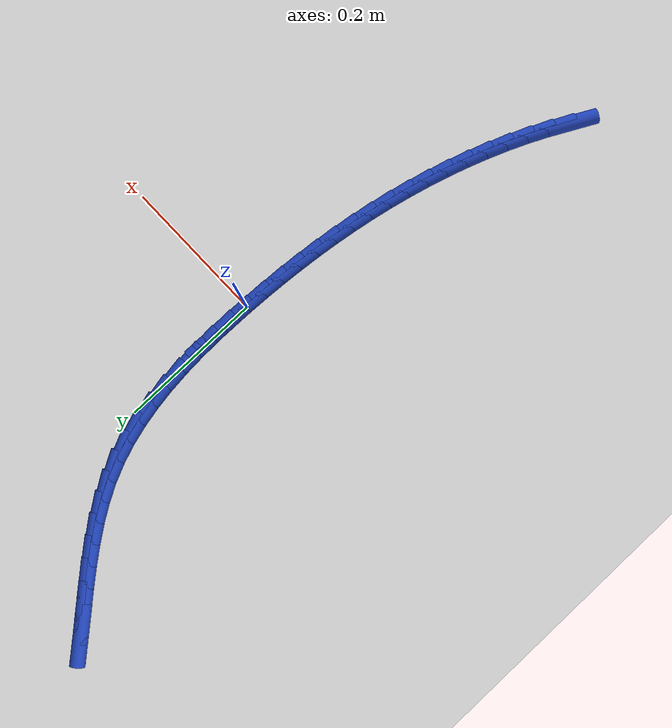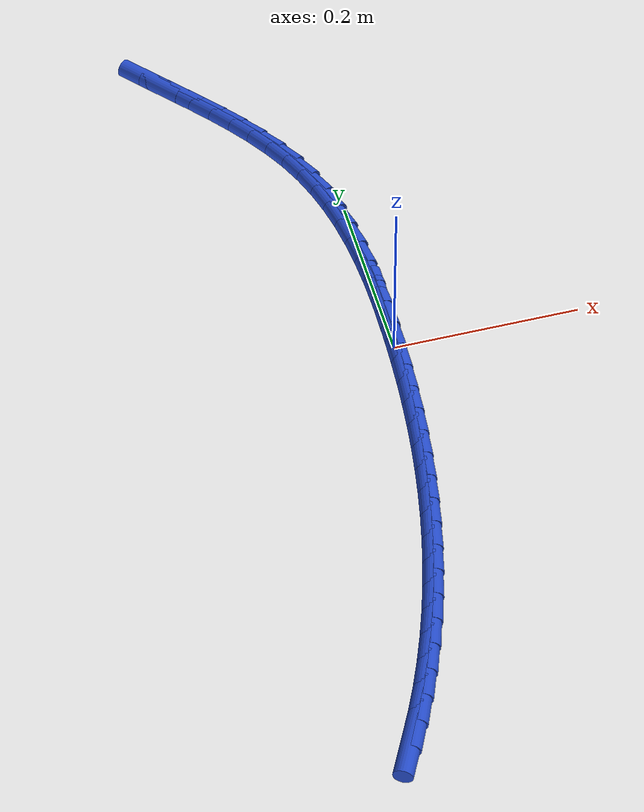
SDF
<sdf version="1.6">
 <world name="default">
  <model name="ground_plane">
   <static>1</static>
   <link name="link">
    <collision name="collision">
     <geometry><plane><normal>0 0 1</normal><size>100 100</size></plane></geometry>
     <surface><friction><ode><mu>100</mu><mu2>50</mu2></ode></friction></surface>
    </collision>
    <visual name="visual">
     <cast_shadows>0</cast_shadows>
     <geometry><plane><normal>0 0 1</normal><size>100 100</size></plane></geometry>
     <material>
      <script><uri>file://media/materials/scripts/gazebo.material</uri><name>Gazebo/WhiteGlow</name></script>
     </material>
    </visual>
   </link>
  </model>
  <model name="line">
   <link name="link_0">
    <pose>-6.7220534694101275e-18 4.163336342344337e-17 0.01 0 1.57 1.5436127908950652</pose>
    <collision name="collision">
     <geometry><cylinder><radius>0.01</radius><length>0.08</length></cylinder></geometry>
    </collision>
    <visual name="visual">
     <material>
      <script><name>Gazebo/Blue</name><uri>file://media/materials/scripts/gazebo.material</uri></script>
     </material>
     <geometry><cylinder><radius>0.01</radius><length>0.08</length></cylinder></geometry>
    </visual>
   </link>
   <link name="link_1">
    <pose>0.0007952474365013262 0.029247539705945094 0.01 0 1.57 1.5660994794677434</pose>
    <collision name="collision">
     <geometry><cylinder><radius>0.01</radius><length>0.08</length></cylinder></geometry>
    </collision>
    <visual name="visual">
     <material>
      <script><name>Gazebo/Blue</name><uri>file://media/materials/scripts/gazebo.material</uri></script>
     </material>
     <geometry><cylinder><radius>0.01</radius><length>0.08</length></cylinder></geometry>
    </visual>
   </link>
   <link name="link_2">
    <pose>0.0009331593185395411 0.058609973334598164 0.01 0 1.57 -1.547204821749383</pose>
    <collision name="collision">
     <geometry><cylinder><radius>0.01</radius><length>0.08</length></cylinder></geometry>
    </collision>
    <visual name="visual">
     <material>
      <script><name>Gazebo/Blue</name><uri>file://media/materials/scripts/gazebo.material</uri></script>
     </material>
     <geometry><cylinder><radius>0.01</radius><length>0.08</length></cylinder></geometry>
    </visual>
   </link>
   <link name="link_3">
    <pose>0.00024092148070058725 0.08794720332395434 0.01 0 1.57 -1.5127508872278654</pose>
    <collision name="collision">
     <geometry><cylinder><radius>0.01</radius><length>0.08</length></cylinder></geometry>
    </collision>
    <visual name="visual">
     <material>
      <script><name>Gazebo/Blue</name><uri>file://media/materials/scripts/gazebo.material</uri></script>
     </material>
     <geometry><cylinder><radius>0.01</radius><length>0.08</length></cylinder></geometry>
    </visual>
   </link>
   <link name="link_4">
    <pose>-0.001454280242429589 0.11711913211200858 0.01 0 1.57 -1.4716652824233203</pose>
    <collision name="collision">
     <geometry><cylinder><radius>0.01</radius><length>0.08</length></cylinder></geometry>
    </collision>
    <visual name="visual">
     <material>
      <script><name>Gazebo/Blue</name><uri>file://media/materials/scripts/gazebo.material</uri></script>
     </material>
     <geometry><cylinder><radius>0.01</radius><length>0.08</length></cylinder></geometry>
    </visual>
   </link>
   <link name="link_5">
    <pose>-0.004325260016265041 0.14598566213675607 0.01 0 1.57 -1.423406450708269</pose>
    <collision name="collision">
     <geometry><cylinder><radius>0.01</radius><length>0.08</length></cylinder></geometry>
    </collision>
    <visual name="visual">
     <material>
      <script><name>Gazebo/Blue</name><uri>file://media/materials/scripts/gazebo.material</uri></script>
     </material>
     <geometry><cylinder><radius>0.01</radius><length>0.08</length></cylinder></geometry>
    </visual>
   </link>
   <link name="link_6">
    <pose>-0.008544832006219827 0.1744066958361919 0.01 0 1.57 -1.3674012323876739</pose>
    <collision name="collision">
     <geometry><cylinder><radius>0.01</radius><length>0.08</length></cylinder></geometry>
    </collision>
    <visual name="visual">
     <material>
      <script><name>Gazebo/Blue</name><uri>file://media/materials/scripts/gazebo.material</uri></script>
     </material>
     <geometry><cylinder><radius>0.01</radius><length>0.08</length></cylinder></geometry>
    </visual>
   </link>
   <link name="link_7">
    <pose>-0.014285810377707991 0.20224213564831098 0.01 0 1.57 -1.3031154964479952</pose>
    <collision name="collision">
     <geometry><cylinder><radius>0.01</radius><length>0.08</length></cylinder></geometry>
    </collision>
    <visual name="visual">
     <material>
      <script><name>Gazebo/Blue</name><uri>file://media/materials/scripts/gazebo.material</uri></script>
     </material>
     <geometry><cylinder><radius>0.01</radius><length>0.08</length></cylinder></geometry>
    </visual>
   </link>
   <link name="link_8">
    <pose>-0.02172100929614359 0.22935188401110854 0.01 0 1.57 -1.2301605490318037</pose>
    <collision name="collision">
     <geometry><cylinder><radius>0.01</radius><length>0.08</length></cylinder></geometry>
    </collision>
    <visual name="visual">
     <material>
      <script><name>Gazebo/Blue</name><uri>file://media/materials/scripts/gazebo.material</uri></script>
     </material>
     <geometry><cylinder><radius>0.01</radius><length>0.08</length></cylinder></geometry>
    </visual>
   </link>
   <link name="link_9">
    <pose>-0.031023242926940683 0.25559584336257957 0.01 0 1.57 -1.148730025832334</pose>
    <collision name="collision">
     <geometry><cylinder><radius>0.01</radius><length>0.08</length></cylinder></geometry>
    </collision>
    <visual name="visual">
     <material>
      <script><name>Gazebo/Blue</name><uri>file://media/materials/scripts/gazebo.material</uri></script>
     </material>
     <geometry><cylinder><radius>0.01</radius><length>0.08</length></cylinder></geometry>
    </visual>
   </link>
   <link name="link_10">
    <pose>-0.042358504904863634 0.2808384239106037 0.01 0 1.57 -1.0682264505489718</pose>
    <collision name="collision">
     <geometry><cylinder><radius>0.01</radius><length>0.08</length></cylinder></geometry>
    </collision>
    <visual name="visual">
     <material>
      <script><name>Gazebo/Blue</name><uri>file://media/materials/scripts/gazebo.material</uri></script>
     </material>
     <geometry><cylinder><radius>0.01</radius><length>0.08</length></cylinder></geometry>
    </visual>
   </link>
   <link name="link_11">
    <pose>-0.055683894871363535 0.30508209638950606 0.01 0 1.57 -0.9999975761849269</pose>
    <collision name="collision">
     <geometry><cylinder><radius>0.01</radius><length>0.08</length></cylinder></geometry>
    </collision>
    <visual name="visual">
     <material>
      <script><name>Gazebo/Blue</name><uri>file://media/materials/scripts/gazebo.material</uri></script>
     </material>
     <geometry><cylinder><radius>0.01</radius><length>0.08</length></cylinder></geometry>
    </visual>
   </link>
   <link name="link_12">
    <pose>-0.07071383657959388 0.32848971891652495 0.01 0 1.57 -0.9450374537527997</pose>
    <collision name="collision">
     <geometry><cylinder><radius>0.01</radius><length>0.08</length></cylinder></geometry>
    </collision>
    <visual name="visual">
     <material>
      <script><name>Gazebo/Blue</name><uri>file://media/materials/scripts/gazebo.material</uri></script>
     </material>
     <geometry><cylinder><radius>0.01</radius><length>0.08</length></cylinder></geometry>
    </visual>
   </link>
   <link name="link_13">
    <pose>-0.08714912924655485 0.3512331542270027 0.01 0 1.57 -0.9032056299600782</pose>
    <collision name="collision">
     <geometry><cylinder><radius>0.01</radius><length>0.08</length></cylinder></geometry>
    </collision>
    <visual name="visual">
     <material>
      <script><name>Gazebo/Blue</name><uri>file://media/materials/scripts/gazebo.material</uri></script>
     </material>
     <geometry><cylinder><radius>0.01</radius><length>0.08</length></cylinder></geometry>
    </visual>
   </link>
   <link name="link_14">
    <pose>-0.10469057208924673 0.37348426505628124 0.01 0 1.57 -0.8741007875847613</pose>
    <collision name="collision">
     <geometry><cylinder><radius>0.01</radius><length>0.08</length></cylinder></geometry>
    </collision>
    <visual name="visual">
     <material>
      <script><name>Gazebo/Blue</name><uri>file://media/materials/scripts/gazebo.material</uri></script>
     </material>
     <geometry><cylinder><radius>0.01</radius><length>0.08</length></cylinder></geometry>
    </visual>
   </link>
   <link name="link_15">
    <pose>-0.12303896432466971 0.39541491413970276 0.01 0 1.57 -0.8572731410447892</pose>
    <collision name="collision">
     <geometry><cylinder><radius>0.01</radius><length>0.08</length></cylinder></geometry>
    </collision>
    <visual name="visual">
     <material>
      <script><name>Gazebo/Blue</name><uri>file://media/materials/scripts/gazebo.material</uri></script>
     </material>
     <geometry><cylinder><radius>0.01</radius><length>0.08</length></cylinder></geometry>
    </visual>
   </link>
   <link name="link_16">
    <pose>-0.14189510516982404 0.41719696421260943 0.01 0 1.57 -0.8523550540909516</pose>
    <collision name="collision">
     <geometry><cylinder><radius>0.01</radius><length>0.08</length></cylinder></geometry>
    </collision>
    <visual name="visual">
     <material>
      <script><name>Gazebo/Blue</name><uri>file://media/materials/scripts/gazebo.material</uri></script>
     </material>
     <geometry><cylinder><radius>0.01</radius><length>0.08</length></cylinder></geometry>
    </visual>
   </link>
   <link name="link_17">
    <pose>-0.16095979384170983 0.4390022780103431 0.01 0 1.57 -0.8591250138811715</pose>
    <collision name="collision">
     <geometry><cylinder><radius>0.01</radius><length>0.08</length></cylinder></geometry>
    </collision>
    <visual name="visual">
     <material>
      <script><name>Gazebo/Blue</name><uri>file://media/materials/scripts/gazebo.material</uri></script>
     </material>
     <geometry><cylinder><radius>0.01</radius><length>0.08</length></cylinder></geometry>
    </visual>
   </link>
   <link name="link_213">
    <pose>-0.1142726121833462 -0.46826570654995686 0.01 0 1.57 1.087462853460318</pose>
    <collision name="collision">
     <geometry><cylinder><radius>0.01</radius><length>0.08</length></cylinder></geometry>
    </collision>
    <visual name="visual">
     <material>
      <script><name>Gazebo/Blue</name><uri>file://media/materials/scripts/gazebo.material</uri></script>
     </material>
     <geometry><cylinder><radius>0.01</radius><length>0.08</length></cylinder></geometry>
    </visual>
   </link>
   <link name="link_214">
    <pose>-0.10099002408205122 -0.44295855826381786 0.01 0 1.57 1.1257997262552142</pose>
    <collision name="collision">
     <geometry><cylinder><radius>0.01</radius><length>0.08</length></cylinder></geometry>
    </collision>
    <visual name="visual">
     <material>
      <script><name>Gazebo/Blue</name><uri>file://media/materials/scripts/gazebo.material</uri></script>
     </material>
     <geometry><cylinder><radius>0.01</radius><length>0.08</length></cylinder></geometry>
    </visual>
   </link>
   <link name="link_215">
    <pose>-0.08865287914328525 -0.41708904456025914 0.01 0 1.57 1.1620676013531654</pose>
    <collision name="collision">
     <geometry><cylinder><radius>0.01</radius><length>0.08</length></cylinder></geometry>
    </collision>
    <visual name="visual">
     <material>
      <script><name>Gazebo/Blue</name><uri>file://media/materials/scripts/gazebo.material</uri></script>
     </material>
     <geometry><cylinder><radius>0.01</radius><length>0.08</length></cylinder></geometry>
    </visual>
   </link>
   <link name="link_216">
    <pose>-0.07723819055848438 -0.39073451836566475 0.01 0 1.57 1.196414052599469</pose>
    <collision name="collision">
     <geometry><cylinder><radius>0.01</radius><length>0.08</length></cylinder></geometry>
    </collision>
    <visual name="visual">
     <material>
      <script><name>Gazebo/Blue</name><uri>file://media/materials/scripts/gazebo.material</uri></script>
     </material>
     <geometry><cylinder><radius>0.01</radius><length>0.08</length></cylinder></geometry>
    </visual>
   </link>
   <link name="link_217">
    <pose>-0.0667229715190837 -0.3639723326064174 0.01 0 1.57 1.2289891522137986</pose>
    <collision name="collision">
     <geometry><cylinder><radius>0.01</radius><length>0.08</length></cylinder></geometry>
    </collision>
    <visual name="visual">
     <material>
      <script><name>Gazebo/Blue</name><uri>file://media/materials/scripts/gazebo.material</uri></script>
     </material>
     <geometry><cylinder><radius>0.01</radius><length>0.08</length></cylinder></geometry>
    </visual>
   </link>
   <link name="link_218">
    <pose>-0.05708423521651868 -0.3368798402089002 0.01 0 1.57 1.259942806178912</pose>
    <collision name="collision">
     <geometry><cylinder><radius>0.01</radius><length>0.08</length></cylinder></geometry>
    </collision>
    <visual name="visual">
     <material>
      <script><name>Gazebo/Blue</name><uri>file://media/materials/scripts/gazebo.material</uri></script>
     </material>
     <geometry><cylinder><radius>0.01</radius><length>0.08</length></cylinder></geometry>
    </visual>
   </link>
   <link name="link_219">
    <pose>-0.048298994842224566 -0.30953439409949546 0.01 0 1.57 1.2894230542607898</pose>
    <collision name="collision">
     <geometry><cylinder><radius>0.01</radius><length>0.08</length></cylinder></geometry>
    </collision>
    <visual name="visual">
     <material>
      <script><name>Gazebo/Blue</name><uri>file://media/materials/scripts/gazebo.material</uri></script>
     </material>
     <geometry><cylinder><radius>0.01</radius><length>0.08</length></cylinder></geometry>
    </visual>
   </link>
   <link name="link_220">
    <pose>-0.04034426358763726 -0.28201334720458776 0.01 0 1.57 1.3175902886262678</pose>
    <collision name="collision">
     <geometry><cylinder><radius>0.01</radius><length>0.08</length></cylinder></geometry>
    </collision>
    <visual name="visual">
     <material>
      <script><name>Gazebo/Blue</name><uri>file://media/materials/scripts/gazebo.material</uri></script>
     </material>
     <geometry><cylinder><radius>0.01</radius><length>0.08</length></cylinder></geometry>
    </visual>
   </link>
   <link name="link_221">
    <pose>-0.033196773370753135 -0.25439124290384485 0.01 0 1.57 1.3448021699244899</pose>
    <collision name="collision">
     <geometry><cylinder><radius>0.01</radius><length>0.08</length></cylinder></geometry>
    </collision>
    <visual name="visual">
     <material>
      <script><name>Gazebo/Blue</name><uri>file://media/materials/scripts/gazebo.material</uri></script>
     </material>
     <geometry><cylinder><radius>0.01</radius><length>0.08</length></cylinder></geometry>
    </visual>
   </link>
   <link name="link_222">
    <pose>-0.02682824615687371 -0.226692581827811 0.01 0 1.57 1.371208518381716</pose>
    <collision name="collision">
     <geometry><cylinder><radius>0.01</radius><length>0.08</length></cylinder></geometry>
    </collision>
    <visual name="visual">
     <material>
      <script><name>Gazebo/Blue</name><uri>file://media/materials/scripts/gazebo.material</uri></script>
     </material>
     <geometry><cylinder><radius>0.01</radius><length>0.08</length></cylinder></geometry>
    </visual>
   </link>
   <link name="link_223">
    <pose>-0.02120609137315675 -0.19889878809961742 0.01 0 1.57 1.3967005913268165</pose>
    <collision name="collision">
     <geometry><cylinder><radius>0.01</radius><length>0.08</length></cylinder></geometry>
    </collision>
    <visual name="visual">
     <material>
      <script><name>Gazebo/Blue</name><uri>file://media/materials/scripts/gazebo.material</uri></script>
     </material>
     <geometry><cylinder><radius>0.01</radius><length>0.08</length></cylinder></geometry>
    </visual>
   </link>
   <link name="link_224">
    <pose>-0.016297577639463375 -0.1709898793651965 0.01 0 1.57 1.4211740045984784</pose>
    <collision name="collision">
     <geometry><cylinder><radius>0.01</radius><length>0.08</length></cylinder></geometry>
    </collision>
    <visual name="visual">
     <material>
      <script><name>Gazebo/Blue</name><uri>file://media/materials/scripts/gazebo.material</uri></script>
     </material>
     <geometry><cylinder><radius>0.01</radius><length>0.08</length></cylinder></geometry>
    </visual>
   </link>
   <link name="link_225">
    <pose>-0.012069973575654218 -0.142945873270478 0.01 0 1.57 1.444537436298685</pose>
    <collision name="collision">
     <geometry><cylinder><radius>0.01</radius><length>0.08</length></cylinder></geometry>
    </collision>
    <visual name="visual">
     <material>
      <script><name>Gazebo/Blue</name><uri>file://media/materials/scripts/gazebo.material</uri></script>
     </material>
     <geometry><cylinder><radius>0.01</radius><length>0.08</length></cylinder></geometry>
    </visual>
   </link>
   <link name="link_226">
    <pose>-0.008490547801590094 -0.11474678746139291 0.01 0 1.57 1.466713274395477</pose>
    <collision name="collision">
     <geometry><cylinder><radius>0.01</radius><length>0.08</length></cylinder></geometry>
    </collision>
    <visual name="visual">
     <material>
      <script><name>Gazebo/Blue</name><uri>file://media/materials/scripts/gazebo.material</uri></script>
     </material>
     <geometry><cylinder><radius>0.01</radius><length>0.08</length></cylinder></geometry>
    </visual>
   </link>
   <link name="link_227">
    <pose>-0.005526568937131814 -0.08637263958387188 0.01 0 1.57 1.4876378077690149</pose>
    <collision name="collision">
     <geometry><cylinder><radius>0.01</radius><length>0.08</length></cylinder></geometry>
    </collision>
    <visual name="visual">
     <material>
      <script><name>Gazebo/Blue</name><uri>file://media/materials/scripts/gazebo.material</uri></script>
     </material>
     <geometry><cylinder><radius>0.01</radius><length>0.08</length></cylinder></geometry>
    </visual>
   </link>
   <link name="link_228">
    <pose>-0.0031453056021401157 -0.0578034472838449 0.01 0 1.57 1.507261012978011</pose>
    <collision name="collision">
     <geometry><cylinder><radius>0.01</radius><length>0.08</length></cylinder></geometry>
    </collision>
    <visual name="visual">
     <material>
      <script><name>Gazebo/Blue</name><uri>file://media/materials/scripts/gazebo.material</uri></script>
     </material>
     <geometry><cylinder><radius>0.01</radius><length>0.08</length></cylinder></geometry>
    </visual>
   </link>
   <link name="link_229">
    <pose>-0.001314026416475937 -0.02901922820724427 0.01 0 1.57 1.5255460044409048</pose>
    <collision name="collision">
     <geometry><cylinder><radius>0.01</radius><length>0.08</length></cylinder></geometry>
    </collision>
    <visual name="visual">
     <material>
      <script><name>Gazebo/Blue</name><uri>file://media/materials/scripts/gazebo.material</uri></script>
     </material>
     <geometry><cylinder><radius>0.01</radius><length>0.08</length></cylinder></geometry>
    </visual>
   </link>
   <link name="link_230">
    <pose>-7.914675859144182e-18 5.551115123125783e-17 0.01 0 1.57 1.5424682232001676</pose>
    <collision name="collision">
     <geometry><cylinder><radius>0.01</radius><length>0.08</length></cylinder></geometry>
    </collision>
    <visual name="visual">
     <material>
      <script><name>Gazebo/Blue</name><uri>file://media/materials/scripts/gazebo.material</uri></script>
     </material>
     <geometry><cylinder><radius>0.01</radius><length>0.08</length></cylinder></geometry>
    </visual>
   </link>
   <link name="link_231">
    <pose>0.0008295050274268615 0.02927421969195733 0.01 0 1.57 1.5580144399402098</pose>
    <collision name="collision">
     <geometry><cylinder><radius>0.01</radius><length>0.08</length></cylinder></geometry>
    </collision>
    <visual name="visual">
     <material>
      <script><name>Gazebo/Blue</name><uri>file://media/materials/scripts/gazebo.material</uri></script>
     </material>
     <geometry><cylinder><radius>0.01</radius><length>0.08</length></cylinder></geometry>
    </visual>
   </link>
   <link name="link_232">
    <pose>0.0012072200459438674 0.058823413222696755 0.01 0 1.57 1.5502764260418733</pose>
    <collision name="collision">
     <geometry><cylinder><radius>0.01</radius><length>0.08</length></cylinder></geometry>
    </collision>
    <visual name="visual">
     <material>
      <script><name>Gazebo/Blue</name><uri>file://media/materials/scripts/gazebo.material</uri></script>
     </material>
     <geometry><cylinder><radius>0.01</radius><length>0.08</length></cylinder></geometry>
    </visual>
   </link>
  </model>
 </world>
</sdf>
